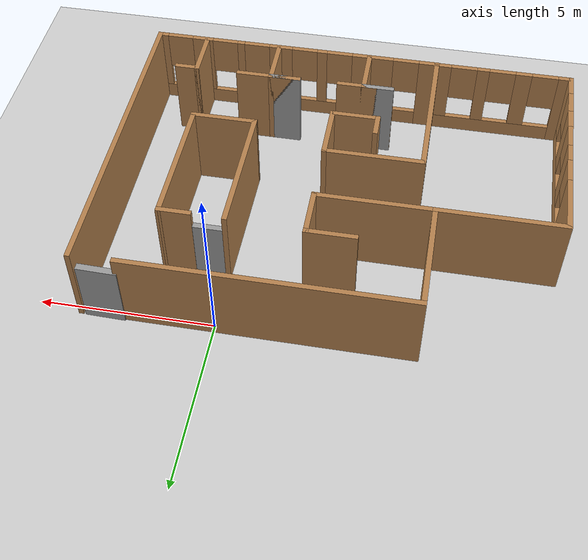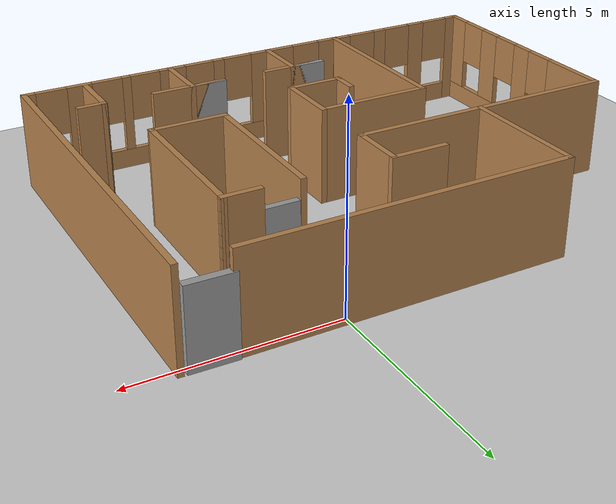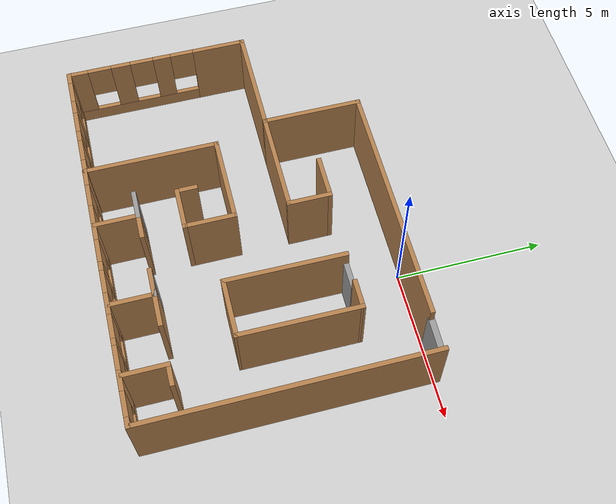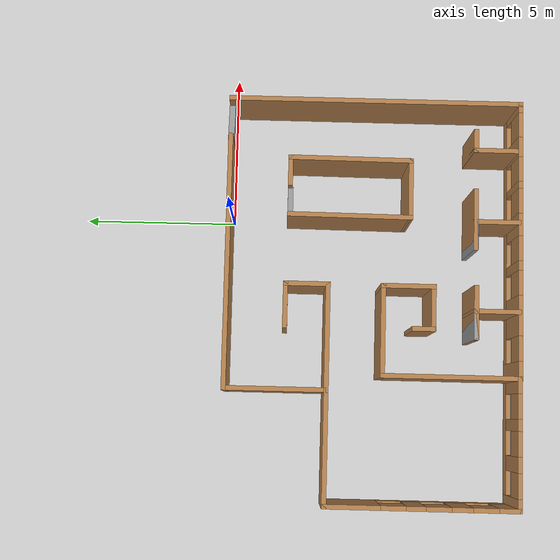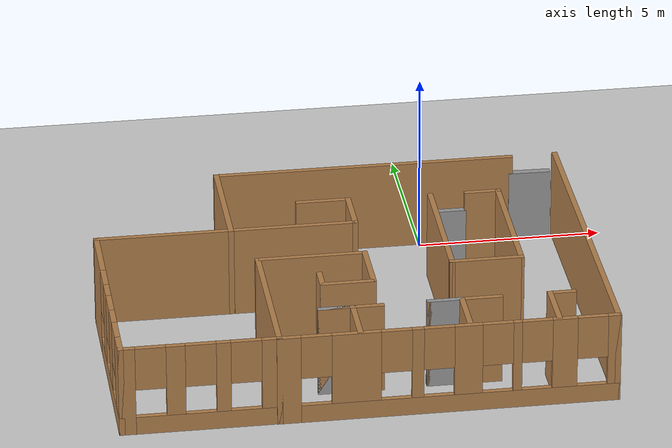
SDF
<sdf version="1.7">
 <world name="default">
  <light name="sun" type="directional">
   <pose>0 0 10 0 -0 0</pose>
   <diffuse>0.8 0.8 0.8 1</diffuse>
   <specular>0.2 0.2 0.2 1</specular>
   <attenuation>
    <range>1000</range>
    <constant>0.9</constant>
    <linear>0.01</linear>
    <quadratic>0.001</quadratic>
   </attenuation>
   <direction>-0.5 0.1 -0.9</direction>
   <spot><inner_angle>0</inner_angle><outer_angle>0</outer_angle><falloff>0</falloff></spot>
  </light>
  <model name="ground_plane">
   <static>1</static>
   <link name="link">
    <collision name="collision">
     <geometry><plane><normal>0 0 1</normal><size>100 100</size></plane></geometry>
     <surface>
      <contact><collide_bitmask>65535</collide_bitmask></contact>
      <friction><ode><mu>100</mu><mu2>50</mu2></ode></friction>
     </surface>
    </collision>
    <visual name="visual">
     <cast_shadows>0</cast_shadows>
     <geometry><plane><normal>0 0 1</normal><size>100 100</size></plane></geometry>
     <material>
      <script><uri>file://media/materials/scripts/gazebo.material</uri><name>Gazebo/Grey</name></script>
     </material>
    </visual>
   </link>
  </model>
  <gravity>0 0 -9.8</gravity>
  <magnetic_field>6e-06 2.3e-05 -4.2e-05</magnetic_field>
  <atmosphere type="adiabatic"/>
  <physics type="ode">
   <max_step_size>0.001</max_step_size>
   <real_time_factor>1</real_time_factor>
   <real_time_update_rate>1000</real_time_update_rate>
  </physics>
  <scene><ambient>0.4 0.4 0.4 1</ambient><background>0.7 0.7 0.7 1</background><shadows>1</shadows></scene>
  <spherical_coordinates>
   <surface_model>EARTH_WGS84</surface_model>
   <latitude_deg>0</latitude_deg>
   <longitude_deg>0</longitude_deg>
   <elevation>0</elevation>
   <heading_deg>0</heading_deg>
  </spherical_coordinates>
  <model name="simWorld">
   <pose>-2.70722 -4.55348 0 0 -0 0</pose>
   <link name="Door_0">
    <collision name="Door_0_Collision">
     <geometry><box><size>0.9 0.17 2</size></box></geometry>
     <pose>0 0 1 0 -0 0</pose>
    </collision>
    <visual name="Door_0_Visual">
     <pose>0 0 1 0 -0 0</pose>
     <geometry><box><size>0.9 0.17 2</size></box></geometry>
     <material>
      <script><uri>file://media/materials/scripts/gazebo.material</uri><name>Gazebo/Grey</name></script>
     </material>
    </visual>
    <pose>3.22745 2.69682 0 0 -0 0</pose>
   </link>
   <link name="Door_1">
    <collision name="Door_1_Collision">
     <geometry><box><size>1.14971 0.2 2</size></box></geometry>
     <pose>0 0 1 0 -0 0</pose>
    </collision>
    <visual name="Door_1_Visual">
     <pose>0 0 1 0 -0 0</pose>
     <geometry><box><size>1.14971 0.2 2</size></box></geometry>
     <material>
      <script><uri>file://media/materials/scripts/gazebo.material</uri><name>Gazebo/Grey</name></script>
     </material>
    </visual>
    <pose>5.76796 4.67115 0 0 -0 3.12122</pose>
   </link>
   <link name="Wall_100">
    <pose>-4.425 -4.66177 0 0 -0 0</pose>
    <visual name="Wall_100_Visual_0">
     <pose>-1.90254 0 1.25 0 -0 0</pose>
     <geometry><box><size>0.444922 0.15 2.5</size></box></geometry>
     <material>
      <script><uri>file://media/materials/scripts/gazebo.material</uri><name>Gazebo/Wood</name></script>
      <ambient>1 1 1 1</ambient>
     </material>
     <meta><layer>0</layer></meta>
    </visual>
    <collision name="Wall_100_Collision_0">
     <geometry><box><size>0.444922 0.15 2.5</size></box></geometry>
     <pose>-1.90254 0 1.25 0 -0 0</pose>
    </collision>
    <visual name="Wall_100_Visual_1">
     <pose>0.222461 0 0.25 0 -0 0</pose>
     <geometry><box><size>3.80508 0.15 0.5</size></box></geometry>
     <material>
      <script><uri>file://media/materials/scripts/gazebo.material</uri><name>Gazebo/Wood</name></script>
      <ambient>1 1 1 1</ambient>
     </material>
     <meta><layer>0</layer></meta>
    </visual>
    <collision name="Wall_100_Collision_1">
     <geometry><box><size>3.80508 0.15 0.5</size></box></geometry>
     <pose>0.222461 0 0.25 0 -0 0</pose>
    </collision>
    <visual name="Wall_100_Visual_2">
     <pose>-0.632053 0 1.5 0 -0 0</pose>
     <geometry><box><size>0.49605 0.15 2</size></box></geometry>
     <material>
      <script><uri>file://media/materials/scripts/gazebo.material</uri><name>Gazebo/Wood</name></script>
      <ambient>1 1 1 1</ambient>
     </material>
     <meta><layer>0</layer></meta>
    </visual>
    <collision name="Wall_100_Collision_2">
     <geometry><box><size>0.49605 0.15 2</size></box></geometry>
     <pose>-0.632053 0 1.5 0 -0 0</pose>
    </collision>
    <visual name="Wall_100_Visual_3">
     <pose>0.604484 0 1.5 0 -0 0</pose>
     <geometry><box><size>0.377025 0.15 2</size></box></geometry>
     <material>
      <script><uri>file://media/materials/scripts/gazebo.material</uri><name>Gazebo/Wood</name></script>
      <ambient>1 1 1 1</ambient>
     </material>
     <meta><layer>0</layer></meta>
    </visual>
    <collision name="Wall_100_Collision_3">
     <geometry><box><size>0.377025 0.15 2</size></box></geometry>
     <pose>0.604484 0 1.5 0 -0 0</pose>
    </collision>
    <visual name="Wall_100_Visual_4">
     <pose>1.859 0 1.5 0 -0 0</pose>
     <geometry><box><size>0.532003 0.15 2</size></box></geometry>
     <material>
      <script><uri>file://media/materials/scripts/gazebo.material</uri><name>Gazebo/Wood</name></script>
      <ambient>1 1 1 1</ambient>
     </material>
     <meta><layer>0</layer></meta>
    </visual>
    <collision name="Wall_100_Collision_4">
     <geometry><box><size>0.532003 0.15 2</size></box></geometry>
     <pose>1.859 0 1.5 0 -0 0</pose>
    </collision>
    <visual name="Wall_100_Visual_5">
     <pose>-1.28008 0 1.9 0 -0 0</pose>
     <geometry><box><size>0.8 0.15 1.2</size></box></geometry>
     <material>
      <script><uri>file://media/materials/scripts/gazebo.material</uri><name>Gazebo/Wood</name></script>
      <ambient>1 1 1 1</ambient>
     </material>
     <meta><layer>0</layer></meta>
    </visual>
    <collision name="Wall_100_Collision_5">
     <geometry><box><size>0.8 0.15 1.2</size></box></geometry>
     <pose>-1.28008 0 1.9 0 -0 0</pose>
    </collision>
    <visual name="Wall_100_Visual_6">
     <pose>0.015972 0 1.9 0 -0 0</pose>
     <geometry><box><size>0.8 0.15 1.2</size></box></geometry>
     <material>
      <script><uri>file://media/materials/scripts/gazebo.material</uri><name>Gazebo/Wood</name></script>
      <ambient>1 1 1 1</ambient>
     </material>
     <meta><layer>0</layer></meta>
    </visual>
    <collision name="Wall_100_Collision_6">
     <geometry><box><size>0.8 0.15 1.2</size></box></geometry>
     <pose>0.015972 0 1.9 0 -0 0</pose>
    </collision>
    <visual name="Wall_100_Visual_7">
     <pose>1.193 0 1.9 0 -0 0</pose>
     <geometry><box><size>0.8 0.15 1.2</size></box></geometry>
     <material>
      <script><uri>file://media/materials/scripts/gazebo.material</uri><name>Gazebo/Wood</name></script>
      <ambient>1 1 1 1</ambient>
     </material>
     <meta><layer>0</layer></meta>
    </visual>
    <collision name="Wall_100_Collision_7">
     <geometry><box><size>0.8 0.15 1.2</size></box></geometry>
     <pose>1.193 0 1.9 0 -0 0</pose>
    </collision>
   </link>
   <link name="Wall_25">
    <collision name="Wall_25_Collision">
     <geometry><box><size>3.36903 0.15 2.5</size></box></geometry>
     <pose>0 0 1.25 0 -0 0</pose>
    </collision>
    <visual name="Wall_25_Visual">
     <pose>0 0 1.25 0 -0 0</pose>
     <geometry><box><size>3.36903 0.15 2.5</size></box></geometry>
     <material>
      <script><uri>file://media/materials/scripts/gazebo.material</uri><name>Gazebo/Wood</name></script>
      <ambient>1 1 1 1</ambient>
     </material>
     <meta><layer>0</layer></meta>
    </visual>
    <pose>-2.875 3.04774 0 0 -0 -1.5708</pose>
   </link>
   <link name="Wall_26">
    <collision name="Wall_26_Collision">
     <geometry><box><size>3.5 0.15 2.5</size></box></geometry>
     <pose>0 0 1.25 0 -0 0</pose>
    </collision>
    <visual name="Wall_26_Visual">
     <pose>0 0 1.25 0 -0 0</pose>
     <geometry><box><size>3.5 0.15 2.5</size></box></geometry>
     <material>
      <script><uri>file://media/materials/scripts/gazebo.material</uri><name>Gazebo/Wood</name></script>
      <ambient>1 1 1 1</ambient>
     </material>
     <meta><layer>0</layer></meta>
    </visual>
    <pose>-1.2 1.43823 0 0 -0 0</pose>
   </link>
   <link name="Wall_28">
    <collision name="Wall_28_Collision">
     <geometry><box><size>3 0.15 2.5</size></box></geometry>
     <pose>0 0 1.25 0 -0 0</pose>
    </collision>
    <visual name="Wall_28_Visual">
     <pose>0 0 1.25 0 -0 0</pose>
     <geometry><box><size>3 0.15 2.5</size></box></geometry>
     <material>
      <script><uri>file://media/materials/scripts/gazebo.material</uri><name>Gazebo/Wood</name></script>
      <ambient>1 1 1 1</ambient>
     </material>
     <meta><layer>0</layer></meta>
    </visual>
    <pose>-0.95 -0.325 0 0 -0 3.14159</pose>
   </link>
   <link name="Wall_29">
    <collision name="Wall_29_Collision">
     <geometry><box><size>4.5 0.15 2.5</size></box></geometry>
     <pose>0 0 1.25 0 -0 0</pose>
    </collision>
    <visual name="Wall_29_Visual">
     <pose>0 0 1.25 0 -0 0</pose>
     <geometry><box><size>4.5 0.15 2.5</size></box></geometry>
     <material>
      <script><uri>file://media/materials/scripts/gazebo.material</uri><name>Gazebo/Wood</name></script>
      <ambient>1 1 1 1</ambient>
     </material>
     <meta><layer>0</layer></meta>
    </visual>
    <pose>-2.375 -2.5 0 0 -0 -1.5708</pose>
   </link>
   <link name="Wall_33">
    <pose>2.05 -4.675 0 0 -0 0</pose>
    <visual name="Wall_33_Visual_0">
     <pose>-4.18509 0 1.25 0 -0 0</pose>
     <geometry><box><size>0.629821 0.15 2.5</size></box></geometry>
     <material>
      <script><uri>file://media/materials/scripts/gazebo.material</uri><name>Gazebo/Wood</name></script>
      <ambient>1 1 1 1</ambient>
     </material>
     <meta><layer>0</layer></meta>
    </visual>
    <collision name="Wall_33_Collision_0">
     <geometry><box><size>0.629821 0.15 2.5</size></box></geometry>
     <pose>-4.18509 0 1.25 0 -0 0</pose>
    </collision>
    <visual name="Wall_33_Visual_1">
     <pose>0.314911 0 0.25 0 -0 0</pose>
     <geometry><box><size>8.37018 0.15 0.5</size></box></geometry>
     <material>
      <script><uri>file://media/materials/scripts/gazebo.material</uri><name>Gazebo/Wood</name></script>
      <ambient>1 1 1 1</ambient>
     </material>
     <meta><layer>0</layer></meta>
    </visual>
    <collision name="Wall_33_Collision_1">
     <geometry><box><size>8.37018 0.15 0.5</size></box></geometry>
     <pose>0.314911 0 0.25 0 -0 0</pose>
    </collision>
    <visual name="Wall_33_Visual_2">
     <pose>-2.4254 0 1.5 0 -0 0</pose>
     <geometry><box><size>1.28955 0.15 2</size></box></geometry>
     <material>
      <script><uri>file://media/materials/scripts/gazebo.material</uri><name>Gazebo/Wood</name></script>
      <ambient>1 1 1 1</ambient>
     </material>
     <meta><layer>0</layer></meta>
    </visual>
    <collision name="Wall_33_Collision_2">
     <geometry><box><size>1.28955 0.15 2</size></box></geometry>
     <pose>-2.4254 0 1.5 0 -0 0</pose>
    </collision>
    <visual name="Wall_33_Visual_3">
     <pose>-0.825178 0 1.5 0 -0 0</pose>
     <geometry><box><size>0.3109 0.15 2</size></box></geometry>
     <material>
      <script><uri>file://media/materials/scripts/gazebo.material</uri><name>Gazebo/Wood</name></script>
      <ambient>1 1 1 1</ambient>
     </material>
     <meta><layer>0</layer></meta>
    </visual>
    <collision name="Wall_33_Collision_3">
     <geometry><box><size>0.3109 0.15 2</size></box></geometry>
     <pose>-0.825178 0 1.5 0 -0 0</pose>
    </collision>
    <visual name="Wall_33_Visual_4">
     <pose>0.497322 0 1.5 0 -0 0</pose>
     <geometry><box><size>0.7341 0.15 2</size></box></geometry>
     <material>
      <script><uri>file://media/materials/scripts/gazebo.material</uri><name>Gazebo/Wood</name></script>
      <ambient>1 1 1 1</ambient>
     </material>
     <meta><layer>0</layer></meta>
    </visual>
    <collision name="Wall_33_Collision_4">
     <geometry><box><size>0.7341 0.15 2</size></box></geometry>
     <pose>0.497322 0 1.5 0 -0 0</pose>
    </collision>
    <visual name="Wall_33_Visual_5">
     <pose>1.78015 0 1.5 0 -0 0</pose>
     <geometry><box><size>0.23155 0.15 2</size></box></geometry>
     <material>
      <script><uri>file://media/materials/scripts/gazebo.material</uri><name>Gazebo/Wood</name></script>
      <ambient>1 1 1 1</ambient>
     </material>
     <meta><layer>0</layer></meta>
    </visual>
    <collision name="Wall_33_Collision_5">
     <geometry><box><size>0.23155 0.15 2</size></box></geometry>
     <pose>1.78015 0 1.5 0 -0 0</pose>
    </collision>
    <visual name="Wall_33_Visual_6">
     <pose>3.0233 0 1.5 0 -0 0</pose>
     <geometry><box><size>0.65475 0.15 2</size></box></geometry>
     <material>
      <script><uri>file://media/materials/scripts/gazebo.material</uri><name>Gazebo/Wood</name></script>
      <ambient>1 1 1 1</ambient>
     </material>
     <meta><layer>0</layer></meta>
    </visual>
    <collision name="Wall_33_Collision_6">
     <geometry><box><size>0.65475 0.15 2</size></box></geometry>
     <pose>3.0233 0 1.5 0 -0 0</pose>
    </collision>
    <visual name="Wall_33_Visual_7">
     <pose>4.32534 0 1.5 0 -0 0</pose>
     <geometry><box><size>0.349328 0.15 2</size></box></geometry>
     <material>
      <script><uri>file://media/materials/scripts/gazebo.material</uri><name>Gazebo/Wood</name></script>
      <ambient>1 1 1 1</ambient>
     </material>
     <meta><layer>0</layer></meta>
    </visual>
    <collision name="Wall_33_Collision_7">
     <geometry><box><size>0.349328 0.15 2</size></box></geometry>
     <pose>4.32534 0 1.5 0 -0 0</pose>
    </collision>
    <visual name="Wall_33_Visual_8">
     <pose>-3.47018 0 1.9 0 -0 0</pose>
     <geometry><box><size>0.8 0.15 1.2</size></box></geometry>
     <material>
      <script><uri>file://media/materials/scripts/gazebo.material</uri><name>Gazebo/Wood</name></script>
      <ambient>1 1 1 1</ambient>
     </material>
     <meta><layer>0</layer></meta>
    </visual>
    <collision name="Wall_33_Collision_8">
     <geometry><box><size>0.8 0.15 1.2</size></box></geometry>
     <pose>-3.47018 0 1.9 0 -0 0</pose>
    </collision>
    <visual name="Wall_33_Visual_9">
     <pose>-1.38063 0 1.9 0 -0 0</pose>
     <geometry><box><size>0.8 0.15 1.2</size></box></geometry>
     <material>
      <script><uri>file://media/materials/scripts/gazebo.material</uri><name>Gazebo/Wood</name></script>
      <ambient>1 1 1 1</ambient>
     </material>
     <meta><layer>0</layer></meta>
    </visual>
    <collision name="Wall_33_Collision_9">
     <geometry><box><size>0.8 0.15 1.2</size></box></geometry>
     <pose>-1.38063 0 1.9 0 -0 0</pose>
    </collision>
    <visual name="Wall_33_Visual_10">
     <pose>-0.269728 0 1.9 0 -0 0</pose>
     <geometry><box><size>0.8 0.15 1.2</size></box></geometry>
     <material>
      <script><uri>file://media/materials/scripts/gazebo.material</uri><name>Gazebo/Wood</name></script>
      <ambient>1 1 1 1</ambient>
     </material>
     <meta><layer>0</layer></meta>
    </visual>
    <collision name="Wall_33_Collision_10">
     <geometry><box><size>0.8 0.15 1.2</size></box></geometry>
     <pose>-0.269728 0 1.9 0 -0 0</pose>
    </collision>
    <visual name="Wall_33_Visual_11">
     <pose>1.26437 0 1.9 0 -0 0</pose>
     <geometry><box><size>0.8 0.15 1.2</size></box></geometry>
     <material>
      <script><uri>file://media/materials/scripts/gazebo.material</uri><name>Gazebo/Wood</name></script>
      <ambient>1 1 1 1</ambient>
     </material>
     <meta><layer>0</layer></meta>
    </visual>
    <collision name="Wall_33_Collision_11">
     <geometry><box><size>0.8 0.15 1.2</size></box></geometry>
     <pose>1.26437 0 1.9 0 -0 0</pose>
    </collision>
    <visual name="Wall_33_Visual_12">
     <pose>2.29592 0 1.9 0 -0 0</pose>
     <geometry><box><size>0.8 0.15 1.2</size></box></geometry>
     <material>
      <script><uri>file://media/materials/scripts/gazebo.material</uri><name>Gazebo/Wood</name></script>
      <ambient>1 1 1 1</ambient>
     </material>
     <meta><layer>0</layer></meta>
    </visual>
    <collision name="Wall_33_Collision_12">
     <geometry><box><size>0.8 0.15 1.2</size></box></geometry>
     <pose>2.29592 0 1.9 0 -0 0</pose>
    </collision>
    <visual name="Wall_33_Visual_13">
     <pose>3.75067 0 1.9 0 -0 0</pose>
     <geometry><box><size>0.8 0.15 1.2</size></box></geometry>
     <material>
      <script><uri>file://media/materials/scripts/gazebo.material</uri><name>Gazebo/Wood</name></script>
      <ambient>1 1 1 1</ambient>
     </material>
     <meta><layer>0</layer></meta>
    </visual>
    <collision name="Wall_33_Collision_13">
     <geometry><box><size>0.8 0.15 1.2</size></box></geometry>
     <pose>3.75067 0 1.9 0 -0 0</pose>
    </collision>
   </link>
   <link name="Wall_35">
    <collision name="Wall_35_Collision">
     <geometry><box><size>9.5 0.15 2.5</size></box></geometry>
     <pose>0 0 1.25 0 -0 0</pose>
    </collision>
    <visual name="Wall_35_Visual">
     <pose>0 0 1.25 0 -0 0</pose>
     <geometry><box><size>9.5 0.15 2.5</size></box></geometry>
     <material>
      <script><uri>file://media/materials/scripts/gazebo.material</uri><name>Gazebo/Wood</name></script>
      <ambient>1 1 1 1</ambient>
     </material>
     <meta><layer>0</layer></meta>
    </visual>
    <pose>6.475 0 0 0 -0 1.5708</pose>
   </link>
   <link name="Wall_38">
    <collision name="Wall_38_Collision">
     <geometry><box><size>4.01911 0.15 2.5</size></box></geometry>
     <pose>0 0 1.25 0 -0 0</pose>
    </collision>
    <visual name="Wall_38_Visual">
     <pose>0 0 1.25 0 -0 0</pose>
     <geometry><box><size>4.01911 0.15 2.5</size></box></geometry>
     <material>
      <script><uri>file://media/materials/scripts/gazebo.material</uri><name>Gazebo/Wood</name></script>
      <ambient>1 1 1 1</ambient>
     </material>
     <meta><layer>0</layer></meta>
    </visual>
    <pose>2.69515 0.777531 0 0 -0 -1.57866</pose>
   </link>
   <link name="Wall_39">
    <collision name="Wall_39_Collision">
     <geometry><box><size>2 0.15 2.5</size></box></geometry>
     <pose>0 0 1.25 0 -0 0</pose>
    </collision>
    <visual name="Wall_39_Visual">
     <pose>0 0 1.25 0 -0 0</pose>
     <geometry><box><size>2 0.15 2.5</size></box></geometry>
     <material>
      <script><uri>file://media/materials/scripts/gazebo.material</uri><name>Gazebo/Wood</name></script>
      <ambient>1 1 1 1</ambient>
     </material>
     <meta><layer>0</layer></meta>
    </visual>
    <pose>3.60494 -1.15696 0 0 -0 0</pose>
   </link>
   <link name="Wall_40">
    <collision name="Wall_40_Collision">
     <geometry><box><size>4.01911 0.15 2.5</size></box></geometry>
     <pose>0 0 1.25 0 -0 0</pose>
    </collision>
    <visual name="Wall_40_Visual">
     <pose>0 0 1.25 0 -0 0</pose>
     <geometry><box><size>4.01911 0.15 2.5</size></box></geometry>
     <material>
      <script><uri>file://media/materials/scripts/gazebo.material</uri><name>Gazebo/Wood</name></script>
      <ambient>1 1 1 1</ambient>
     </material>
     <meta><layer>0</layer></meta>
    </visual>
    <pose>4.54515 0.777531 0 0 -0 1.56293</pose>
   </link>
   <link name="Wall_42">
    <collision name="Wall_42_Collision">
     <geometry><box><size>1 0.15 2.5</size></box></geometry>
     <pose>0 0 1.25 0 -0 0</pose>
    </collision>
    <visual name="Wall_42_Visual">
     <pose>0 0 1.25 0 -0 0</pose>
     <geometry><box><size>1 0.15 2.5</size></box></geometry>
     <material>
      <script><uri>file://media/materials/scripts/gazebo.material</uri><name>Gazebo/Wood</name></script>
      <ambient>1 1 1 1</ambient>
     </material>
     <meta><layer>0</layer></meta>
    </visual>
    <pose>4.13536 2.71202 0 0 -0 3.14159</pose>
   </link>
   <link name="Wall_47">
    <collision name="Wall_47_Collision">
     <geometry><box><size>8.25 0.15 2.5</size></box></geometry>
     <pose>0 0 1.25 0 -0 0</pose>
    </collision>
    <visual name="Wall_47_Visual">
     <pose>0 0 1.25 0 -0 0</pose>
     <geometry><box><size>8.25 0.15 2.5</size></box></geometry>
     <material>
      <script><uri>file://media/materials/scripts/gazebo.material</uri><name>Gazebo/Wood</name></script>
      <ambient>1 1 1 1</ambient>
     </material>
     <meta><layer>0</layer></meta>
    </visual>
    <pose>1.175 4.67047 0 0 -0 0</pose>
   </link>
   <link name="Wall_73">
    <collision name="Wall_73_Collision">
     <geometry><box><size>1.5 0.15 2.5</size></box></geometry>
     <pose>0 0 1.25 0 -0 0</pose>
    </collision>
    <visual name="Wall_73_Visual">
     <pose>0 0 1.25 0 -0 0</pose>
     <geometry><box><size>1.5 0.15 2.5</size></box></geometry>
     <material>
      <script><uri>file://media/materials/scripts/gazebo.material</uri><name>Gazebo/Wood</name></script>
      <ambient>1 1 1 1</ambient>
     </material>
     <meta><layer>0</layer></meta>
    </visual>
    <pose>-0.269603 -3.95388 0 0 -0 1.5708</pose>
   </link>
   <link name="Wall_76">
    <collision name="Wall_76_Collision">
     <geometry><box><size>1 0.15 2.5</size></box></geometry>
     <pose>0 0 1.25 0 -0 0</pose>
    </collision>
    <visual name="Wall_76_Visual">
     <pose>0 0 1.25 0 -0 0</pose>
     <geometry><box><size>1 0.15 2.5</size></box></geometry>
     <material>
      <script><uri>file://media/materials/scripts/gazebo.material</uri><name>Gazebo/Grey</name></script>
      <ambient>1 1 1 1</ambient>
     </material>
     <meta><layer>0</layer></meta>
    </visual>
    <pose>-0.694603 -3.27888 0 0 -0 3.14159</pose>
   </link>
   <link name="Wall_77">
    <collision name="Wall_77_Collision">
     <geometry><box><size>1.75 0.15 2.5</size></box></geometry>
     <pose>0 0 1.25 0 -0 0</pose>
    </collision>
    <visual name="Wall_77_Visual">
     <pose>0 0 1.25 0 -0 0</pose>
     <geometry><box><size>1.75 0.15 2.5</size></box></geometry>
     <material>
      <script><uri>file://media/materials/scripts/gazebo.material</uri><name>Gazebo/Wood</name></script>
      <ambient>1 1 1 1</ambient>
     </material>
     <meta><layer>0</layer></meta>
    </visual>
    <pose>-0.319603 -3.27888 0 0 -0 0</pose>
   </link>
   <link name="Wall_80">
    <collision name="Wall_80_Collision">
     <geometry><box><size>1.5 0.15 2.5</size></box></geometry>
     <pose>0 0 1.25 0 -0 0</pose>
    </collision>
    <visual name="Wall_80_Visual">
     <pose>0 0 1.25 0 -0 0</pose>
     <geometry><box><size>1.5 0.15 2.5</size></box></geometry>
     <material>
      <script><uri>file://media/materials/scripts/gazebo.material</uri><name>Gazebo/Wood</name></script>
      <ambient>1 1 1 1</ambient>
     </material>
     <meta><layer>0</layer></meta>
    </visual>
    <pose>2.60022 -3.92743 0 0 -0 1.5708</pose>
   </link>
   <link name="Wall_81">
    <collision name="Wall_81_Collision">
     <geometry><box><size>1 0.15 2.5</size></box></geometry>
     <pose>0 0 1.25 0 -0 0</pose>
    </collision>
    <visual name="Wall_81_Visual">
     <pose>0 0 1.25 0 -0 0</pose>
     <geometry><box><size>1 0.15 2.5</size></box></geometry>
     <material>
      <script><uri>file://media/materials/scripts/gazebo.material</uri><name>Gazebo/Grey</name></script>
      <ambient>1 1 1 1</ambient>
     </material>
     <meta><layer>0</layer></meta>
    </visual>
    <pose>2.17522 -3.25243 0 0 -0 3.14159</pose>
   </link>
   <link name="Wall_82">
    <collision name="Wall_82_Collision">
     <geometry><box><size>2 0.15 2.5</size></box></geometry>
     <pose>0 0 1.25 0 -0 0</pose>
    </collision>
    <visual name="Wall_82_Visual">
     <pose>0 0 1.25 0 -0 0</pose>
     <geometry><box><size>2 0.15 2.5</size></box></geometry>
     <material>
      <script><uri>file://media/materials/scripts/gazebo.material</uri><name>Gazebo/Wood</name></script>
      <ambient>1 1 1 1</ambient>
     </material>
     <meta><layer>0</layer></meta>
    </visual>
    <pose>2.67522 -3.25243 0 0 -0 0</pose>
   </link>
   <link name="Wall_85">
    <collision name="Wall_85_Collision">
     <geometry><box><size>1.5 0.15 2.5</size></box></geometry>
     <pose>0 0 1.25 0 -0 0</pose>
    </collision>
    <visual name="Wall_85_Visual">
     <pose>0 0 1.25 0 -0 0</pose>
     <geometry><box><size>1.5 0.15 2.5</size></box></geometry>
     <material>
      <script><uri>file://media/materials/scripts/gazebo.material</uri><name>Gazebo/Wood</name></script>
      <ambient>1 1 1 1</ambient>
     </material>
     <meta><layer>0</layer></meta>
    </visual>
    <pose>4.92782 -3.92743 0 0 -0 1.5708</pose>
   </link>
   <link name="Wall_86">
    <collision name="Wall_86_Collision">
     <geometry><box><size>0.75 0.15 2.5</size></box></geometry>
     <pose>0 0 1.25 0 -0 0</pose>
    </collision>
    <visual name="Wall_86_Visual">
     <pose>0 0 1.25 0 -0 0</pose>
     <geometry><box><size>0.75 0.15 2.5</size></box></geometry>
     <material>
      <script><uri>file://media/materials/scripts/gazebo.material</uri><name>Gazebo/Wood</name></script>
      <ambient>1 1 1 1</ambient>
     </material>
     <meta><layer>0</layer></meta>
    </visual>
    <pose>5.24105 -3.25243 0 0 -0 0</pose>
   </link>
   <link name="Wall_89">
    <collision name="Wall_89_Collision">
     <geometry><box><size>1.5 0.15 2.5</size></box></geometry>
     <pose>0 0 1.25 0 -0 0</pose>
    </collision>
    <visual name="Wall_89_Visual">
     <pose>0 0 1.25 0 -0 0</pose>
     <geometry><box><size>1.5 0.15 2.5</size></box></geometry>
     <material>
      <script><uri>file://media/materials/scripts/gazebo.material</uri><name>Gazebo/Wood</name></script>
      <ambient>1 1 1 1</ambient>
     </material>
     <meta><layer>0</layer></meta>
    </visual>
    <pose>0.475 2.11322 0 0 -0 1.5708</pose>
   </link>
   <link name="Wall_90">
    <collision name="Wall_90_Collision">
     <geometry><box><size>1.5 0.15 2.5</size></box></geometry>
     <pose>0 0 1.25 0 -0 0</pose>
    </collision>
    <visual name="Wall_90_Visual">
     <pose>0 0 1.25 0 -0 0</pose>
     <geometry><box><size>1.5 0.15 2.5</size></box></geometry>
     <material>
      <script><uri>file://media/materials/scripts/gazebo.material</uri><name>Gazebo/Wood</name></script>
      <ambient>1 1 1 1</ambient>
     </material>
     <meta><layer>0</layer></meta>
    </visual>
    <pose>-0.2 2.78823 0 0 -0 3.14159</pose>
   </link>
   <link name="Wall_92">
    <collision name="Wall_92_Collision">
     <geometry><box><size>1.75 0.15 2.5</size></box></geometry>
     <pose>0 0 1.25 0 -0 0</pose>
    </collision>
    <visual name="Wall_92_Visual">
     <pose>0 0 1.25 0 -0 0</pose>
     <geometry><box><size>1.75 0.15 2.5</size></box></geometry>
     <material>
      <script><uri>file://media/materials/scripts/gazebo.material</uri><name>Gazebo/Wood</name></script>
      <ambient>1 1 1 1</ambient>
     </material>
     <meta><layer>0</layer></meta>
    </visual>
    <pose>0.475 -1.125 0 0 -0 -1.5708</pose>
   </link>
   <link name="Wall_93">
    <collision name="Wall_93_Collision">
     <geometry><box><size>1.5 0.15 2.5</size></box></geometry>
     <pose>0 0 1.25 0 -0 0</pose>
    </collision>
    <visual name="Wall_93_Visual">
     <pose>0 0 1.25 0 -0 0</pose>
     <geometry><box><size>1.5 0.15 2.5</size></box></geometry>
     <material>
      <script><uri>file://media/materials/scripts/gazebo.material</uri><name>Gazebo/Wood</name></script>
      <ambient>1 1 1 1</ambient>
     </material>
     <meta><layer>0</layer></meta>
    </visual>
    <pose>-0.2 -1.925 0 0 -0 3.14159</pose>
   </link>
   <link name="Wall_95">
    <collision name="Wall_95_Collision">
     <geometry><box><size>0.75 0.15 2.5</size></box></geometry>
     <pose>0 0 1.25 0 -0 0</pose>
    </collision>
    <visual name="Wall_95_Visual">
     <pose>0 0 1.25 0 -0 0</pose>
     <geometry><box><size>0.75 0.15 2.5</size></box></geometry>
     <material>
      <script><uri>file://media/materials/scripts/gazebo.material</uri><name>Gazebo/Wood</name></script>
      <ambient>1 1 1 1</ambient>
     </material>
     <meta><layer>0</layer></meta>
    </visual>
    <pose>-0.875 -1.625 0 0 -0 -1.5708</pose>
   </link>
   <link name="Wall_98">
    <collision name="Wall_98_Collision">
     <geometry><box><size>3.75 0.15 2.5</size></box></geometry>
     <pose>0 0 1.25 0 -0 0</pose>
    </collision>
    <visual name="Wall_98_Visual">
     <pose>0 0 1.25 0 -0 0</pose>
     <geometry><box><size>3.75 0.15 2.5</size></box></geometry>
     <material>
      <script><uri>file://media/materials/scripts/gazebo.material</uri><name>Gazebo/Wood</name></script>
      <ambient>1 1 1 1</ambient>
     </material>
     <meta><layer>0</layer></meta>
    </visual>
    <pose>-4.675 1.43823 0 0 -0 3.14159</pose>
   </link>
   <link name="Wall_99">
    <pose>-6.475 -1.61177 0 0 -0 -1.5708</pose>
    <visual name="Wall_99_Visual_0">
     <pose>-2.20463 0 1.25 0 -0 0</pose>
     <geometry><box><size>1.84073 0.15 2.5</size></box></geometry>
     <material>
      <script><uri>file://media/materials/scripts/gazebo.material</uri><name>Gazebo/Wood</name></script>
      <ambient>1 1 1 1</ambient>
     </material>
     <meta><layer>0</layer></meta>
    </visual>
    <collision name="Wall_99_Collision_0">
     <geometry><box><size>1.84073 0.15 2.5</size></box></geometry>
     <pose>-2.20463 0 1.25 0 -0 0</pose>
    </collision>
    <visual name="Wall_99_Visual_1">
     <pose>0.920367 0 0.25 0 -0 0</pose>
     <geometry><box><size>4.40927 0.15 0.5</size></box></geometry>
     <material>
      <script><uri>file://media/materials/scripts/gazebo.material</uri><name>Gazebo/Wood</name></script>
      <ambient>1 1 1 1</ambient>
     </material>
     <meta><layer>0</layer></meta>
    </visual>
    <collision name="Wall_99_Collision_1">
     <geometry><box><size>4.40927 0.15 0.5</size></box></geometry>
     <pose>0.920367 0 0.25 0 -0 0</pose>
    </collision>
    <visual name="Wall_99_Visual_2">
     <pose>-0.176729 0 1.5 0 -0 0</pose>
     <geometry><box><size>0.615075 0.15 2</size></box></geometry>
     <material>
      <script><uri>file://media/materials/scripts/gazebo.material</uri><name>Gazebo/Wood</name></script>
      <ambient>1 1 1 1</ambient>
     </material>
     <meta><layer>0</layer></meta>
    </visual>
    <collision name="Wall_99_Collision_2">
     <geometry><box><size>0.615075 0.15 2</size></box></geometry>
     <pose>-0.176729 0 1.5 0 -0 0</pose>
    </collision>
    <visual name="Wall_99_Visual_3">
     <pose>1.2648 0 1.5 0 -0 0</pose>
     <geometry><box><size>0.667975 0.15 2</size></box></geometry>
     <material>
      <script><uri>file://media/materials/scripts/gazebo.material</uri><name>Gazebo/Wood</name></script>
      <ambient>1 1 1 1</ambient>
     </material>
     <meta><layer>0</layer></meta>
    </visual>
    <collision name="Wall_99_Collision_3">
     <geometry><box><size>0.667975 0.15 2</size></box></geometry>
     <pose>1.2648 0 1.5 0 -0 0</pose>
    </collision>
    <visual name="Wall_99_Visual_4">
     <pose>2.76189 0 1.5 0 -0 0</pose>
     <geometry><box><size>0.726216 0.15 2</size></box></geometry>
     <material>
      <script><uri>file://media/materials/scripts/gazebo.material</uri><name>Gazebo/Wood</name></script>
      <ambient>1 1 1 1</ambient>
     </material>
     <meta><layer>0</layer></meta>
    </visual>
    <collision name="Wall_99_Collision_4">
     <geometry><box><size>0.726216 0.15 2</size></box></geometry>
     <pose>2.76189 0 1.5 0 -0 0</pose>
    </collision>
    <visual name="Wall_99_Visual_5">
     <pose>-0.884266 0 1.9 0 -0 0</pose>
     <geometry><box><size>0.8 0.15 1.2</size></box></geometry>
     <material>
      <script><uri>file://media/materials/scripts/gazebo.material</uri><name>Gazebo/Wood</name></script>
      <ambient>1 1 1 1</ambient>
     </material>
     <meta><layer>0</layer></meta>
    </visual>
    <collision name="Wall_99_Collision_5">
     <geometry><box><size>0.8 0.15 1.2</size></box></geometry>
     <pose>-0.884266 0 1.9 0 -0 0</pose>
    </collision>
    <visual name="Wall_99_Visual_6">
     <pose>0.530809 0 1.9 0 -0 0</pose>
     <geometry><box><size>0.8 0.15 1.2</size></box></geometry>
     <material>
      <script><uri>file://media/materials/scripts/gazebo.material</uri><name>Gazebo/Wood</name></script>
      <ambient>1 1 1 1</ambient>
     </material>
     <meta><layer>0</layer></meta>
    </visual>
    <collision name="Wall_99_Collision_6">
     <geometry><box><size>0.8 0.15 1.2</size></box></geometry>
     <pose>0.530809 0 1.9 0 -0 0</pose>
    </collision>
    <visual name="Wall_99_Visual_7">
     <pose>1.99878 0 1.9 0 -0 0</pose>
     <geometry><box><size>0.8 0.15 1.2</size></box></geometry>
     <material>
      <script><uri>file://media/materials/scripts/gazebo.material</uri><name>Gazebo/Wood</name></script>
      <ambient>1 1 1 1</ambient>
     </material>
     <meta><layer>0</layer></meta>
    </visual>
    <collision name="Wall_99_Collision_7">
     <geometry><box><size>0.8 0.15 1.2</size></box></geometry>
     <pose>1.99878 0 1.9 0 -0 0</pose>
    </collision>
   </link>
   <static>1</static>
  </model>
 </world>
</sdf>
